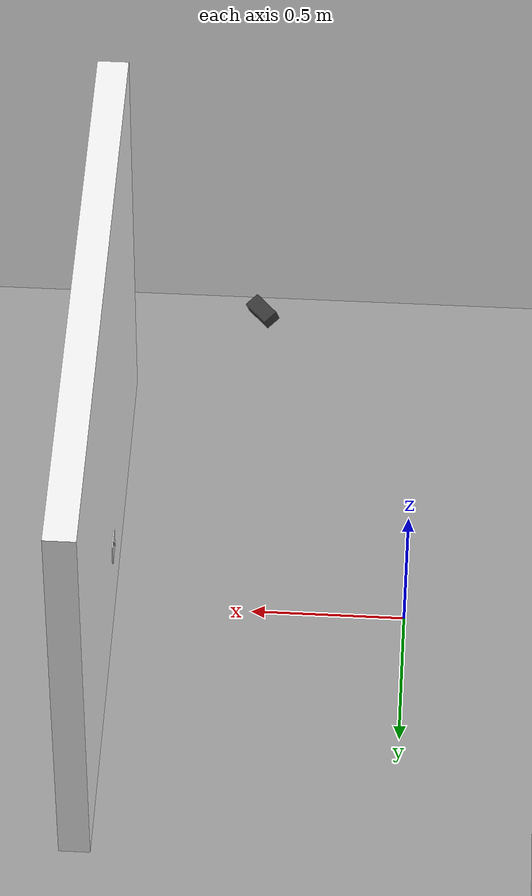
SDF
<?xml version="1.0" ?>
<sdf version="1.8">
  <world name="assembly_world">

    <!-- ── Fizika ─────────────────────────────────────────────── -->
    <physics name="1ms" type="ignored">
      <max_step_size>0.001</max_step_size>   <!-- 1 kHz szimulációs frekvencia -->
      <real_time_factor>1.0</real_time_factor>
    </physics>

    <!-- ── Pluginek (Gazebo–ROS2 integráció) ───────────────────── -->
    <plugin filename="gz-sim-physics-system"
            name="gz::sim::systems::Physics"/>
    <plugin filename="gz-sim-sensors-system"
            name="gz::sim::systems::Sensors">
      <render_engine>ogre2</render_engine>
    </plugin>
    <plugin filename="gz-sim-scene-broadcaster-system"
            name="gz::sim::systems::SceneBroadcaster"/>
    <plugin filename="gz-sim-user-commands-system"
            name="gz::sim::systems::UserCommands"/>

    <!-- ── Megvilágítás ────────────────────────────────────────── -->
    <light name="sun" type="directional">
      <cast_shadows>true</cast_shadows>
      <pose>0 0 10 0 0 0</pose>
      <diffuse>0.9 0.9 0.9 1</diffuse>
      <specular>0.3 0.3 0.3 1</specular>
      <direction>0.3 0.1 -0.9</direction>
    </light>

    <!-- Szórt megvilágítás (árnyékok csökkentéséhez) -->
    <light name="ambient_fill" type="point">
      <pose>0 0 3 0 0 0</pose>
      <diffuse>0.4 0.4 0.4 1</diffuse>
      <specular>0.1 0.1 0.1 1</specular>
      <attenuation>
        <range>20</range>
        <constant>0.5</constant>
        <linear>0.01</linear>
        <quadratic>0.001</quadratic>
      </attenuation>
    </light>

    <!-- ── Talaj ───────────────────────────────────────────────── -->
    <model name="ground_plane">
      <static>true</static>
      <link name="link">
        <collision name="collision">
          <geometry><plane><normal>0 0 1</normal></plane></geometry>
        </collision>
        <visual name="visual">
          <geometry><plane><normal>0 0 1</normal><size>20 20</size></plane></geometry>
          <material>
            <ambient>0.4 0.4 0.4 1</ambient>
            <diffuse>0.6 0.6 0.6 1</diffuse>
          </material>
        </visual>
      </link>
    </model>

    <!-- ── Fal ─────────────────────────────────────────────────── -->
    <!--
      A robot előtt 1 m-re helyezkedik el.
      Mérete: 2m széles, 1.5m magas, 0.1m vastag.
      Pozíció: x=1.0 (a robot x=0-ban van)
    -->
    <model name="wall">
      <static>true</static>
      <pose>1.0 0.0 0.75  0 0 0</pose>
      <link name="link">
        <collision name="collision">
          <geometry>
            <box><size>0.1 2.0 1.5</size></box>
          </geometry>
        </collision>
        <visual name="visual">
          <geometry>
            <box><size>0.1 2.0 1.5</size></box>
          </geometry>
          <material>
            <ambient>0.95 0.95 0.95 1</ambient>
            <diffuse>0.95 0.95 0.95 1</diffuse>
          </material>
        </visual>
      </link>
    </model>

    <!-- ── Fali csatlakozóaljzat (célpont) ─────────────────────── -->
    <model name="connector_socket">
      <static>true</static>
      <pose>0.949 0.0 0.30  0 0 0</pose>
      <link name="link">
        <!-- Keret (fehér műanyag) -->
        <visual name="frame_visual">
          <geometry>
            <box><size>0.005 0.08 0.08</size></box>
          </geometry>
          <material>
            <ambient>0.9 0.9 0.9 1</ambient>
            <diffuse>0.9 0.9 0.9 1</diffuse>
          </material>
        </visual>
        <!-- Lyuk 1 (felső) – sötétszürke -->
        <visual name="hole_top">
          <pose>0.003 0.0 0.015 0 0 0</pose>
          <geometry>
            <cylinder><radius>0.006</radius><length>0.01</length></cylinder>
          </geometry>
          <material>
            <ambient>0.1 0.1 0.1 1</ambient>
            <diffuse>0.1 0.1 0.1 1</diffuse>
          </material>
        </visual>
        <!-- Lyuk 2 (bal) -->
        <visual name="hole_left">
          <pose>0.003 -0.015 -0.01 0 0 0</pose>
          <geometry>
            <cylinder><radius>0.006</radius><length>0.01</length></cylinder>
          </geometry>
          <material>
            <ambient>0.1 0.1 0.1 1</ambient>
            <diffuse>0.1 0.1 0.1 1</diffuse>
          </material>
        </visual>
        <!-- Lyuk 3 (jobb) -->
        <visual name="hole_right">
          <pose>0.003 0.015 -0.01 0 0 0</pose>
          <geometry>
            <cylinder><radius>0.006</radius><length>0.01</length></cylinder>
          </geometry>
          <material>
            <ambient>0.1 0.1 0.1 1</ambient>
            <diffuse>0.1 0.1 0.1 1</diffuse>
          </material>
        </visual>
        <!-- Ütközési geometria (egyszerűsített) -->
        <collision name="collision">
          <geometry>
            <box><size>0.01 0.08 0.08</size></box>
          </geometry>
        </collision>
      </link>
    </model>

    <!-- ── Fix kamera (eye-to-hand) ────────────────────────────── -->
    <model name="eye_to_hand_camera">
      <static>true</static>
      <pose>0.5 -0.6 0.8  0 0.35 0.7</pose>
      <link name="link">
        <!-- Kamera test (vizualizációhoz) -->
        <visual name="camera_body">
          <geometry>
            <box><size>0.05 0.1 0.04</size></box>
          </geometry>
          <material>
            <ambient>0.1 0.1 0.1 1</ambient>
            <diffuse>0.2 0.2 0.2 1</diffuse>
          </material>
        </visual>

        <!-- Kamera szenzor -->
        <sensor name="rgb_camera" type="camera">
          <always_on>true</always_on>
          <update_rate>30</update_rate>
          <visualize>true</visualize>

          <camera>
            <horizontal_fov>1.2</horizontal_fov>   <!-- ~69 fok -->
            <image>
              <width>1280</width>
              <height>720</height>
              <format>R8G8B8</format>
            </image>
            <clip>
              <near>0.05</near>
              <far>10.0</far>
            </clip>
            <!-- Kis mennyiségű kamerazaj a realisztikusabb szimulációhoz -->
            <noise>
              <type>gaussian</type>
              <mean>0.0</mean>
              <stddev>0.005</stddev>
            </noise>
          </camera>

          <!-- ROS2 topic publikálás -->
          <topic>/camera/image_raw</topic>
          <frame_id>camera_optical_frame</frame_id>
        </sensor>
      </link>
    </model>

  </world>
</sdf>
